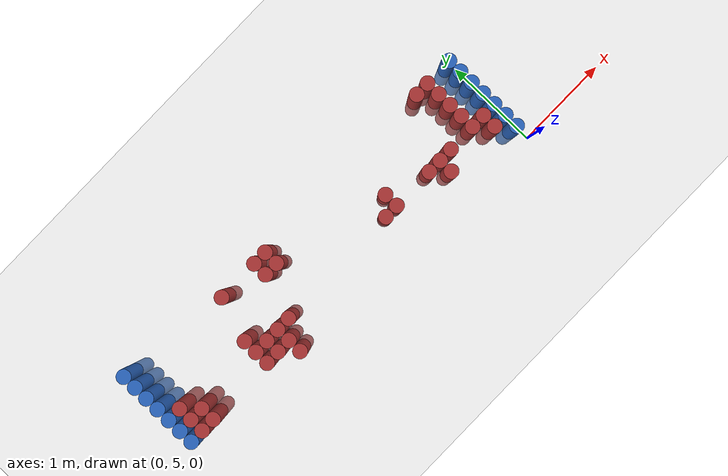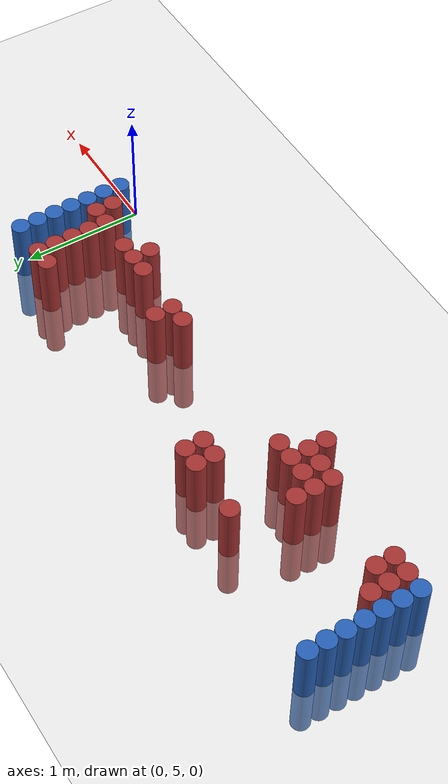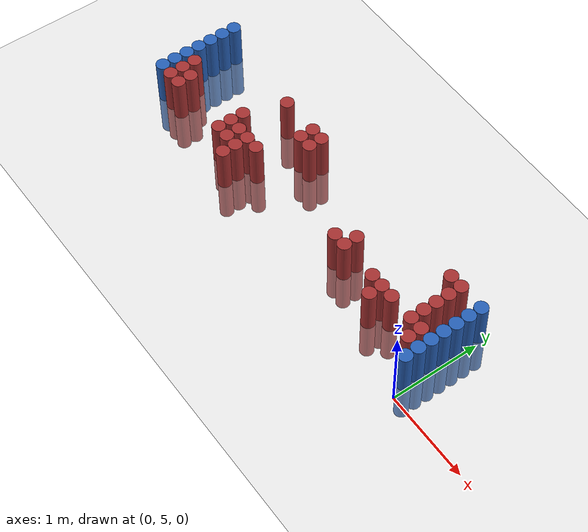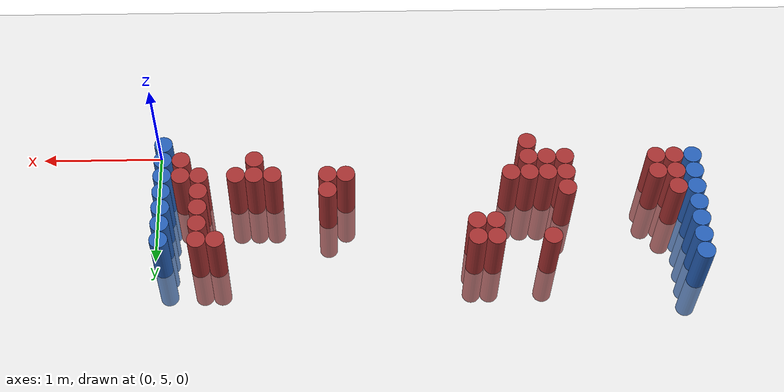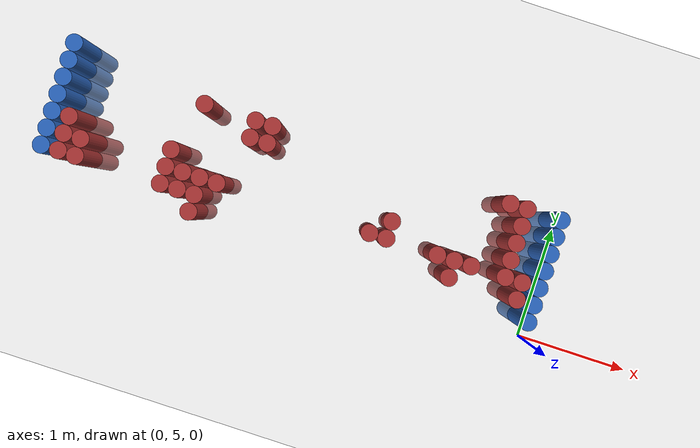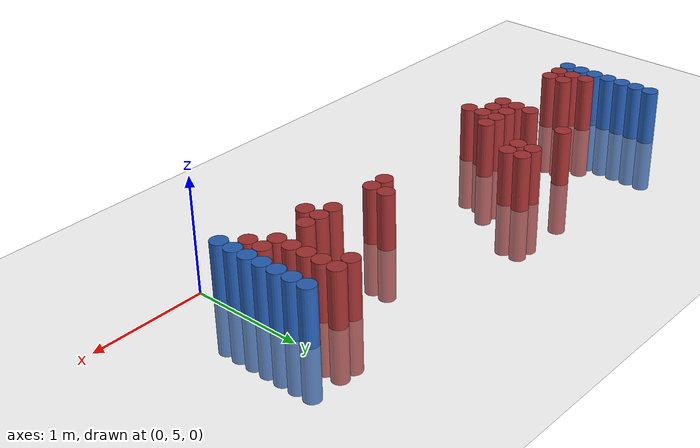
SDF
<sdf version="1.6">
 <world name="default">
  <model name="ground_plane">
   <static>1</static>
   <link name="link">
    <collision name="collision">
     <geometry><plane><normal>0 0 1</normal><size>100 100</size></plane></geometry>
     <surface><friction><ode><mu>100</mu><mu2>50</mu2></ode></friction></surface>
    </collision>
    <visual name="visual">
     <cast_shadows>0</cast_shadows>
     <geometry><plane><normal>0 0 1</normal><size>100 100</size></plane></geometry>
     <material>
      <script><uri>file://media/materials/scripts/gazebo.material</uri><name>Gazebo/Grey</name></script>
     </material>
    </visual>
   </link>
  </model>
  <model name="unit_cylinder_97">
   <static>1</static>
   <pose>-4.425000 5.325000 0.000000 0.000000 0.000000 0.000000</pose>
   <link name="link">
    <inertial>
     <mass>1</mass>
     <inertia><ixx>0.145833</ixx><ixy>0</ixy><ixz>0</ixz><iyy>0.145833</iyy><iyz>0</iyz><izz>0.125</izz></inertia>
    </inertial>
    <collision name="collision">
     <geometry><cylinder><radius>0.075000</radius><length>1</length></cylinder></geometry>
    </collision>
    <visual name="visual">
     <geometry><cylinder><radius>0.075000</radius><length>1</length></cylinder></geometry>
     <material>
      <ambient>0.152000 0.379000 0.720000 1</ambient>
      <diffuse>0.152000 0.379000 0.720000 1</diffuse>
     </material>
     <material>
      <script><name>Gazebo/Grey</name><uri>file://media/materials/scripts/gazebo.material</uri></script>
     </material>
    </visual>
   </link>
  </model>
  <model name="unit_cylinder_98">
   <static>1</static>
   <pose>-4.425000 5.475000 0.000000 0.000000 0.000000 0.000000</pose>
   <link name="link">
    <inertial>
     <mass>1</mass>
     <inertia><ixx>0.145833</ixx><ixy>0</ixy><ixz>0</ixz><iyy>0.145833</iyy><iyz>0</iyz><izz>0.125</izz></inertia>
    </inertial>
    <collision name="collision">
     <geometry><cylinder><radius>0.075000</radius><length>1</length></cylinder></geometry>
    </collision>
    <visual name="visual">
     <geometry><cylinder><radius>0.075000</radius><length>1</length></cylinder></geometry>
     <material>
      <ambient>0.152000 0.379000 0.720000 1</ambient>
      <diffuse>0.152000 0.379000 0.720000 1</diffuse>
     </material>
     <material>
      <script><name>Gazebo/Grey</name><uri>file://media/materials/scripts/gazebo.material</uri></script>
     </material>
    </visual>
   </link>
  </model>
  <model name="unit_cylinder_99">
   <static>1</static>
   <pose>-4.425000 5.625000 0.000000 0.000000 0.000000 0.000000</pose>
   <link name="link">
    <inertial>
     <mass>1</mass>
     <inertia><ixx>0.145833</ixx><ixy>0</ixy><ixz>0</ixz><iyy>0.145833</iyy><iyz>0</iyz><izz>0.125</izz></inertia>
    </inertial>
    <collision name="collision">
     <geometry><cylinder><radius>0.075000</radius><length>1</length></cylinder></geometry>
    </collision>
    <visual name="visual">
     <geometry><cylinder><radius>0.075000</radius><length>1</length></cylinder></geometry>
     <material>
      <ambient>0.152000 0.379000 0.720000 1</ambient>
      <diffuse>0.152000 0.379000 0.720000 1</diffuse>
     </material>
     <material>
      <script><name>Gazebo/Grey</name><uri>file://media/materials/scripts/gazebo.material</uri></script>
     </material>
    </visual>
   </link>
  </model>
  <model name="unit_cylinder_100">
   <static>1</static>
   <pose>-4.425000 5.775000 0.000000 0.000000 0.000000 0.000000</pose>
   <link name="link">
    <inertial>
     <mass>1</mass>
     <inertia><ixx>0.145833</ixx><ixy>0</ixy><ixz>0</ixz><iyy>0.145833</iyy><iyz>0</iyz><izz>0.125</izz></inertia>
    </inertial>
    <collision name="collision">
     <geometry><cylinder><radius>0.075000</radius><length>1</length></cylinder></geometry>
    </collision>
    <visual name="visual">
     <geometry><cylinder><radius>0.075000</radius><length>1</length></cylinder></geometry>
     <material>
      <ambient>0.152000 0.379000 0.720000 1</ambient>
      <diffuse>0.152000 0.379000 0.720000 1</diffuse>
     </material>
     <material>
      <script><name>Gazebo/Grey</name><uri>file://media/materials/scripts/gazebo.material</uri></script>
     </material>
    </visual>
   </link>
  </model>
  <model name="unit_cylinder_101">
   <static>1</static>
   <pose>-4.425000 5.925000 0.000000 0.000000 0.000000 0.000000</pose>
   <link name="link">
    <inertial>
     <mass>1</mass>
     <inertia><ixx>0.145833</ixx><ixy>0</ixy><ixz>0</ixz><iyy>0.145833</iyy><iyz>0</iyz><izz>0.125</izz></inertia>
    </inertial>
    <collision name="collision">
     <geometry><cylinder><radius>0.075000</radius><length>1</length></cylinder></geometry>
    </collision>
    <visual name="visual">
     <geometry><cylinder><radius>0.075000</radius><length>1</length></cylinder></geometry>
     <material>
      <ambient>0.152000 0.379000 0.720000 1</ambient>
      <diffuse>0.152000 0.379000 0.720000 1</diffuse>
     </material>
     <material>
      <script><name>Gazebo/Grey</name><uri>file://media/materials/scripts/gazebo.material</uri></script>
     </material>
    </visual>
   </link>
  </model>
  <model name="unit_cylinder_102">
   <static>1</static>
   <pose>-4.425000 6.075000 0.000000 0.000000 0.000000 0.000000</pose>
   <link name="link">
    <inertial>
     <mass>1</mass>
     <inertia><ixx>0.145833</ixx><ixy>0</ixy><ixz>0</ixz><iyy>0.145833</iyy><iyz>0</iyz><izz>0.125</izz></inertia>
    </inertial>
    <collision name="collision">
     <geometry><cylinder><radius>0.075000</radius><length>1</length></cylinder></geometry>
    </collision>
    <visual name="visual">
     <geometry><cylinder><radius>0.075000</radius><length>1</length></cylinder></geometry>
     <material>
      <ambient>0.152000 0.379000 0.720000 1</ambient>
      <diffuse>0.152000 0.379000 0.720000 1</diffuse>
     </material>
     <material>
      <script><name>Gazebo/Grey</name><uri>file://media/materials/scripts/gazebo.material</uri></script>
     </material>
    </visual>
   </link>
  </model>
  <model name="unit_cylinder_103">
   <static>1</static>
   <pose>-4.425000 6.225000 0.000000 0.000000 0.000000 0.000000</pose>
   <link name="link">
    <inertial>
     <mass>1</mass>
     <inertia><ixx>0.145833</ixx><ixy>0</ixy><ixz>0</ixz><iyy>0.145833</iyy><iyz>0</iyz><izz>0.125</izz></inertia>
    </inertial>
    <collision name="collision">
     <geometry><cylinder><radius>0.075000</radius><length>1</length></cylinder></geometry>
    </collision>
    <visual name="visual">
     <geometry><cylinder><radius>0.075000</radius><length>1</length></cylinder></geometry>
     <material>
      <ambient>0.152000 0.379000 0.720000 1</ambient>
      <diffuse>0.152000 0.379000 0.720000 1</diffuse>
     </material>
     <material>
      <script><name>Gazebo/Grey</name><uri>file://media/materials/scripts/gazebo.material</uri></script>
     </material>
    </visual>
   </link>
  </model>
  <model name="unit_cylinder_126">
   <static>1</static>
   <pose>-4.275000 5.325000 0.000000 0.000000 0.000000 0.000000</pose>
   <link name="link">
    <inertial>
     <mass>1</mass>
     <inertia><ixx>0.145833</ixx><ixy>0</ixy><ixz>0</ixz><iyy>0.145833</iyy><iyz>0</iyz><izz>0.125</izz></inertia>
    </inertial>
    <collision name="collision">
     <geometry><cylinder><radius>0.075000</radius><length>1</length></cylinder></geometry>
    </collision>
    <visual name="visual">
     <geometry><cylinder><radius>0.075000</radius><length>1</length></cylinder></geometry>
     <material>
      <ambient>0.648000 0.192000 0.192000 1</ambient>
      <diffuse>0.648000 0.192000 0.192000 1</diffuse>
     </material>
     <material>
      <script><name>Gazebo/Grey</name><uri>file://media/materials/scripts/gazebo.material</uri></script>
     </material>
    </visual>
   </link>
  </model>
  <model name="unit_cylinder_127">
   <static>1</static>
   <pose>-4.275000 5.475000 0.000000 0.000000 0.000000 0.000000</pose>
   <link name="link">
    <inertial>
     <mass>1</mass>
     <inertia><ixx>0.145833</ixx><ixy>0</ixy><ixz>0</ixz><iyy>0.145833</iyy><iyz>0</iyz><izz>0.125</izz></inertia>
    </inertial>
    <collision name="collision">
     <geometry><cylinder><radius>0.075000</radius><length>1</length></cylinder></geometry>
    </collision>
    <visual name="visual">
     <geometry><cylinder><radius>0.075000</radius><length>1</length></cylinder></geometry>
     <material>
      <ambient>0.648000 0.192000 0.192000 1</ambient>
      <diffuse>0.648000 0.192000 0.192000 1</diffuse>
     </material>
     <material>
      <script><name>Gazebo/Grey</name><uri>file://media/materials/scripts/gazebo.material</uri></script>
     </material>
    </visual>
   </link>
  </model>
  <model name="unit_cylinder_128">
   <static>1</static>
   <pose>-4.275000 5.625000 0.000000 0.000000 0.000000 0.000000</pose>
   <link name="link">
    <inertial>
     <mass>1</mass>
     <inertia><ixx>0.145833</ixx><ixy>0</ixy><ixz>0</ixz><iyy>0.145833</iyy><iyz>0</iyz><izz>0.125</izz></inertia>
    </inertial>
    <collision name="collision">
     <geometry><cylinder><radius>0.075000</radius><length>1</length></cylinder></geometry>
    </collision>
    <visual name="visual">
     <geometry><cylinder><radius>0.075000</radius><length>1</length></cylinder></geometry>
     <material>
      <ambient>0.648000 0.192000 0.192000 1</ambient>
      <diffuse>0.648000 0.192000 0.192000 1</diffuse>
     </material>
     <material>
      <script><name>Gazebo/Grey</name><uri>file://media/materials/scripts/gazebo.material</uri></script>
     </material>
    </visual>
   </link>
  </model>
  <model name="unit_cylinder_139">
   <static>1</static>
   <pose>-4.125000 5.325000 0.000000 0.000000 0.000000 0.000000</pose>
   <link name="link">
    <inertial>
     <mass>1</mass>
     <inertia><ixx>0.145833</ixx><ixy>0</ixy><ixz>0</ixz><iyy>0.145833</iyy><iyz>0</iyz><izz>0.125</izz></inertia>
    </inertial>
    <collision name="collision">
     <geometry><cylinder><radius>0.075000</radius><length>1</length></cylinder></geometry>
    </collision>
    <visual name="visual">
     <geometry><cylinder><radius>0.075000</radius><length>1</length></cylinder></geometry>
     <material>
      <ambient>0.648000 0.192000 0.192000 1</ambient>
      <diffuse>0.648000 0.192000 0.192000 1</diffuse>
     </material>
     <material>
      <script><name>Gazebo/Grey</name><uri>file://media/materials/scripts/gazebo.material</uri></script>
     </material>
    </visual>
   </link>
  </model>
  <model name="unit_cylinder_140">
   <static>1</static>
   <pose>-4.125000 5.475000 0.000000 0.000000 0.000000 0.000000</pose>
   <link name="link">
    <inertial>
     <mass>1</mass>
     <inertia><ixx>0.145833</ixx><ixy>0</ixy><ixz>0</ixz><iyy>0.145833</iyy><iyz>0</iyz><izz>0.125</izz></inertia>
    </inertial>
    <collision name="collision">
     <geometry><cylinder><radius>0.075000</radius><length>1</length></cylinder></geometry>
    </collision>
    <visual name="visual">
     <geometry><cylinder><radius>0.075000</radius><length>1</length></cylinder></geometry>
     <material>
      <ambient>0.648000 0.192000 0.192000 1</ambient>
      <diffuse>0.648000 0.192000 0.192000 1</diffuse>
     </material>
     <material>
      <script><name>Gazebo/Grey</name><uri>file://media/materials/scripts/gazebo.material</uri></script>
     </material>
    </visual>
   </link>
  </model>
  <model name="unit_cylinder_165">
   <static>1</static>
   <pose>-3.375000 5.325000 0.000000 0.000000 0.000000 0.000000</pose>
   <link name="link">
    <inertial>
     <mass>1</mass>
     <inertia><ixx>0.145833</ixx><ixy>0</ixy><ixz>0</ixz><iyy>0.145833</iyy><iyz>0</iyz><izz>0.125</izz></inertia>
    </inertial>
    <collision name="collision">
     <geometry><cylinder><radius>0.075000</radius><length>1</length></cylinder></geometry>
    </collision>
    <visual name="visual">
     <geometry><cylinder><radius>0.075000</radius><length>1</length></cylinder></geometry>
     <material>
      <ambient>0.648000 0.192000 0.192000 1</ambient>
      <diffuse>0.648000 0.192000 0.192000 1</diffuse>
     </material>
     <material>
      <script><name>Gazebo/Grey</name><uri>file://media/materials/scripts/gazebo.material</uri></script>
     </material>
    </visual>
   </link>
  </model>
  <model name="unit_cylinder_166">
   <static>1</static>
   <pose>-3.375000 5.475000 0.000000 0.000000 0.000000 0.000000</pose>
   <link name="link">
    <inertial>
     <mass>1</mass>
     <inertia><ixx>0.145833</ixx><ixy>0</ixy><ixz>0</ixz><iyy>0.145833</iyy><iyz>0</iyz><izz>0.125</izz></inertia>
    </inertial>
    <collision name="collision">
     <geometry><cylinder><radius>0.075000</radius><length>1</length></cylinder></geometry>
    </collision>
    <visual name="visual">
     <geometry><cylinder><radius>0.075000</radius><length>1</length></cylinder></geometry>
     <material>
      <ambient>0.648000 0.192000 0.192000 1</ambient>
      <diffuse>0.648000 0.192000 0.192000 1</diffuse>
     </material>
     <material>
      <script><name>Gazebo/Grey</name><uri>file://media/materials/scripts/gazebo.material</uri></script>
     </material>
    </visual>
   </link>
  </model>
  <model name="unit_cylinder_167">
   <static>1</static>
   <pose>-3.375000 5.625000 0.000000 0.000000 0.000000 0.000000</pose>
   <link name="link">
    <inertial>
     <mass>1</mass>
     <inertia><ixx>0.145833</ixx><ixy>0</ixy><ixz>0</ixz><iyy>0.145833</iyy><iyz>0</iyz><izz>0.125</izz></inertia>
    </inertial>
    <collision name="collision">
     <geometry><cylinder><radius>0.075000</radius><length>1</length></cylinder></geometry>
    </collision>
    <visual name="visual">
     <geometry><cylinder><radius>0.075000</radius><length>1</length></cylinder></geometry>
     <material>
      <ambient>0.648000 0.192000 0.192000 1</ambient>
      <diffuse>0.648000 0.192000 0.192000 1</diffuse>
     </material>
     <material>
      <script><name>Gazebo/Grey</name><uri>file://media/materials/scripts/gazebo.material</uri></script>
     </material>
    </visual>
   </link>
  </model>
  <model name="unit_cylinder_173">
   <static>1</static>
   <pose>-3.225000 5.325000 0.000000 0.000000 0.000000 0.000000</pose>
   <link name="link">
    <inertial>
     <mass>1</mass>
     <inertia><ixx>0.145833</ixx><ixy>0</ixy><ixz>0</ixz><iyy>0.145833</iyy><iyz>0</iyz><izz>0.125</izz></inertia>
    </inertial>
    <collision name="collision">
     <geometry><cylinder><radius>0.075000</radius><length>1</length></cylinder></geometry>
    </collision>
    <visual name="visual">
     <geometry><cylinder><radius>0.075000</radius><length>1</length></cylinder></geometry>
     <material>
      <ambient>0.648000 0.192000 0.192000 1</ambient>
      <diffuse>0.648000 0.192000 0.192000 1</diffuse>
     </material>
     <material>
      <script><name>Gazebo/Grey</name><uri>file://media/materials/scripts/gazebo.material</uri></script>
     </material>
    </visual>
   </link>
  </model>
  <model name="unit_cylinder_174">
   <static>1</static>
   <pose>-3.225000 5.475000 0.000000 0.000000 0.000000 0.000000</pose>
   <link name="link">
    <inertial>
     <mass>1</mass>
     <inertia><ixx>0.145833</ixx><ixy>0</ixy><ixz>0</ixz><iyy>0.145833</iyy><iyz>0</iyz><izz>0.125</izz></inertia>
    </inertial>
    <collision name="collision">
     <geometry><cylinder><radius>0.075000</radius><length>1</length></cylinder></geometry>
    </collision>
    <visual name="visual">
     <geometry><cylinder><radius>0.075000</radius><length>1</length></cylinder></geometry>
     <material>
      <ambient>0.648000 0.192000 0.192000 1</ambient>
      <diffuse>0.648000 0.192000 0.192000 1</diffuse>
     </material>
     <material>
      <script><name>Gazebo/Grey</name><uri>file://media/materials/scripts/gazebo.material</uri></script>
     </material>
    </visual>
   </link>
  </model>
  <model name="unit_cylinder_175">
   <static>1</static>
   <pose>-3.225000 6.075000 0.000000 0.000000 0.000000 0.000000</pose>
   <link name="link">
    <inertial>
     <mass>1</mass>
     <inertia><ixx>0.145833</ixx><ixy>0</ixy><ixz>0</ixz><iyy>0.145833</iyy><iyz>0</iyz><izz>0.125</izz></inertia>
    </inertial>
    <collision name="collision">
     <geometry><cylinder><radius>0.075000</radius><length>1</length></cylinder></geometry>
    </collision>
    <visual name="visual">
     <geometry><cylinder><radius>0.075000</radius><length>1</length></cylinder></geometry>
     <material>
      <ambient>0.648000 0.192000 0.192000 1</ambient>
      <diffuse>0.648000 0.192000 0.192000 1</diffuse>
     </material>
     <material>
      <script><name>Gazebo/Grey</name><uri>file://media/materials/scripts/gazebo.material</uri></script>
     </material>
    </visual>
   </link>
  </model>
  <model name="unit_cylinder_180">
   <static>1</static>
   <pose>-3.075000 5.175000 0.000000 0.000000 0.000000 0.000000</pose>
   <link name="link">
    <inertial>
     <mass>1</mass>
     <inertia><ixx>0.145833</ixx><ixy>0</ixy><ixz>0</ixz><iyy>0.145833</iyy><iyz>0</iyz><izz>0.125</izz></inertia>
    </inertial>
    <collision name="collision">
     <geometry><cylinder><radius>0.075000</radius><length>1</length></cylinder></geometry>
    </collision>
    <visual name="visual">
     <geometry><cylinder><radius>0.075000</radius><length>1</length></cylinder></geometry>
     <material>
      <ambient>0.648000 0.192000 0.192000 1</ambient>
      <diffuse>0.648000 0.192000 0.192000 1</diffuse>
     </material>
     <material>
      <script><name>Gazebo/Grey</name><uri>file://media/materials/scripts/gazebo.material</uri></script>
     </material>
    </visual>
   </link>
  </model>
  <model name="unit_cylinder_181">
   <static>1</static>
   <pose>-3.075000 5.325000 0.000000 0.000000 0.000000 0.000000</pose>
   <link name="link">
    <inertial>
     <mass>1</mass>
     <inertia><ixx>0.145833</ixx><ixy>0</ixy><ixz>0</ixz><iyy>0.145833</iyy><iyz>0</iyz><izz>0.125</izz></inertia>
    </inertial>
    <collision name="collision">
     <geometry><cylinder><radius>0.075000</radius><length>1</length></cylinder></geometry>
    </collision>
    <visual name="visual">
     <geometry><cylinder><radius>0.075000</radius><length>1</length></cylinder></geometry>
     <material>
      <ambient>0.648000 0.192000 0.192000 1</ambient>
      <diffuse>0.648000 0.192000 0.192000 1</diffuse>
     </material>
     <material>
      <script><name>Gazebo/Grey</name><uri>file://media/materials/scripts/gazebo.material</uri></script>
     </material>
    </visual>
   </link>
  </model>
  <model name="unit_cylinder_182">
   <static>1</static>
   <pose>-3.075000 5.475000 0.000000 0.000000 0.000000 0.000000</pose>
   <link name="link">
    <inertial>
     <mass>1</mass>
     <inertia><ixx>0.145833</ixx><ixy>0</ixy><ixz>0</ixz><iyy>0.145833</iyy><iyz>0</iyz><izz>0.125</izz></inertia>
    </inertial>
    <collision name="collision">
     <geometry><cylinder><radius>0.075000</radius><length>1</length></cylinder></geometry>
    </collision>
    <visual name="visual">
     <geometry><cylinder><radius>0.075000</radius><length>1</length></cylinder></geometry>
     <material>
      <ambient>0.648000 0.192000 0.192000 1</ambient>
      <diffuse>0.648000 0.192000 0.192000 1</diffuse>
     </material>
     <material>
      <script><name>Gazebo/Grey</name><uri>file://media/materials/scripts/gazebo.material</uri></script>
     </material>
    </visual>
   </link>
  </model>
  <model name="unit_cylinder_188">
   <static>1</static>
   <pose>-2.925000 5.475000 0.000000 0.000000 0.000000 0.000000</pose>
   <link name="link">
    <inertial>
     <mass>1</mass>
     <inertia><ixx>0.145833</ixx><ixy>0</ixy><ixz>0</ixz><iyy>0.145833</iyy><iyz>0</iyz><izz>0.125</izz></inertia>
    </inertial>
    <collision name="collision">
     <geometry><cylinder><radius>0.075000</radius><length>1</length></cylinder></geometry>
    </collision>
    <visual name="visual">
     <geometry><cylinder><radius>0.075000</radius><length>1</length></cylinder></geometry>
     <material>
      <ambient>0.648000 0.192000 0.192000 1</ambient>
      <diffuse>0.648000 0.192000 0.192000 1</diffuse>
     </material>
     <material>
      <script><name>Gazebo/Grey</name><uri>file://media/materials/scripts/gazebo.material</uri></script>
     </material>
    </visual>
   </link>
  </model>
  <model name="unit_cylinder_192">
   <static>1</static>
   <pose>-2.775000 5.925000 0.000000 0.000000 0.000000 0.000000</pose>
   <link name="link">
    <inertial>
     <mass>1</mass>
     <inertia><ixx>0.145833</ixx><ixy>0</ixy><ixz>0</ixz><iyy>0.145833</iyy><iyz>0</iyz><izz>0.125</izz></inertia>
    </inertial>
    <collision name="collision">
     <geometry><cylinder><radius>0.075000</radius><length>1</length></cylinder></geometry>
    </collision>
    <visual name="visual">
     <geometry><cylinder><radius>0.075000</radius><length>1</length></cylinder></geometry>
     <material>
      <ambient>0.648000 0.192000 0.192000 1</ambient>
      <diffuse>0.648000 0.192000 0.192000 1</diffuse>
     </material>
     <material>
      <script><name>Gazebo/Grey</name><uri>file://media/materials/scripts/gazebo.material</uri></script>
     </material>
    </visual>
   </link>
  </model>
  <model name="unit_cylinder_193">
   <static>1</static>
   <pose>-2.775000 6.075000 0.000000 0.000000 0.000000 0.000000</pose>
   <link name="link">
    <inertial>
     <mass>1</mass>
     <inertia><ixx>0.145833</ixx><ixy>0</ixy><ixz>0</ixz><iyy>0.145833</iyy><iyz>0</iyz><izz>0.125</izz></inertia>
    </inertial>
    <collision name="collision">
     <geometry><cylinder><radius>0.075000</radius><length>1</length></cylinder></geometry>
    </collision>
    <visual name="visual">
     <geometry><cylinder><radius>0.075000</radius><length>1</length></cylinder></geometry>
     <material>
      <ambient>0.648000 0.192000 0.192000 1</ambient>
      <diffuse>0.648000 0.192000 0.192000 1</diffuse>
     </material>
     <material>
      <script><name>Gazebo/Grey</name><uri>file://media/materials/scripts/gazebo.material</uri></script>
     </material>
    </visual>
   </link>
  </model>
  <model name="unit_cylinder_194">
   <static>1</static>
   <pose>-2.625000 5.925000 0.000000 0.000000 0.000000 0.000000</pose>
   <link name="link">
    <inertial>
     <mass>1</mass>
     <inertia><ixx>0.145833</ixx><ixy>0</ixy><ixz>0</ixz><iyy>0.145833</iyy><iyz>0</iyz><izz>0.125</izz></inertia>
    </inertial>
    <collision name="collision">
     <geometry><cylinder><radius>0.075000</radius><length>1</length></cylinder></geometry>
    </collision>
    <visual name="visual">
     <geometry><cylinder><radius>0.075000</radius><length>1</length></cylinder></geometry>
     <material>
      <ambient>0.648000 0.192000 0.192000 1</ambient>
      <diffuse>0.648000 0.192000 0.192000 1</diffuse>
     </material>
     <material>
      <script><name>Gazebo/Grey</name><uri>file://media/materials/scripts/gazebo.material</uri></script>
     </material>
    </visual>
   </link>
  </model>
  <model name="unit_cylinder_195">
   <static>1</static>
   <pose>-2.625000 6.075000 0.000000 0.000000 0.000000 0.000000</pose>
   <link name="link">
    <inertial>
     <mass>1</mass>
     <inertia><ixx>0.145833</ixx><ixy>0</ixy><ixz>0</ixz><iyy>0.145833</iyy><iyz>0</iyz><izz>0.125</izz></inertia>
    </inertial>
    <collision name="collision">
     <geometry><cylinder><radius>0.075000</radius><length>1</length></cylinder></geometry>
    </collision>
    <visual name="visual">
     <geometry><cylinder><radius>0.075000</radius><length>1</length></cylinder></geometry>
     <material>
      <ambient>0.648000 0.192000 0.192000 1</ambient>
      <diffuse>0.648000 0.192000 0.192000 1</diffuse>
     </material>
     <material>
      <script><name>Gazebo/Grey</name><uri>file://media/materials/scripts/gazebo.material</uri></script>
     </material>
    </visual>
   </link>
  </model>
  <model name="unit_cylinder_214">
   <static>1</static>
   <pose>-1.575000 5.475000 0.000000 0.000000 0.000000 0.000000</pose>
   <link name="link">
    <inertial>
     <mass>1</mass>
     <inertia><ixx>0.145833</ixx><ixy>0</ixy><ixz>0</ixz><iyy>0.145833</iyy><iyz>0</iyz><izz>0.125</izz></inertia>
    </inertial>
    <collision name="collision">
     <geometry><cylinder><radius>0.075000</radius><length>1</length></cylinder></geometry>
    </collision>
    <visual name="visual">
     <geometry><cylinder><radius>0.075000</radius><length>1</length></cylinder></geometry>
     <material>
      <ambient>0.648000 0.192000 0.192000 1</ambient>
      <diffuse>0.648000 0.192000 0.192000 1</diffuse>
     </material>
     <material>
      <script><name>Gazebo/Grey</name><uri>file://media/materials/scripts/gazebo.material</uri></script>
     </material>
    </visual>
   </link>
  </model>
  <model name="unit_cylinder_216">
   <static>1</static>
   <pose>-1.425000 5.475000 0.000000 0.000000 0.000000 0.000000</pose>
   <link name="link">
    <inertial>
     <mass>1</mass>
     <inertia><ixx>0.145833</ixx><ixy>0</ixy><ixz>0</ixz><iyy>0.145833</iyy><iyz>0</iyz><izz>0.125</izz></inertia>
    </inertial>
    <collision name="collision">
     <geometry><cylinder><radius>0.075000</radius><length>1</length></cylinder></geometry>
    </collision>
    <visual name="visual">
     <geometry><cylinder><radius>0.075000</radius><length>1</length></cylinder></geometry>
     <material>
      <ambient>0.648000 0.192000 0.192000 1</ambient>
      <diffuse>0.648000 0.192000 0.192000 1</diffuse>
     </material>
     <material>
      <script><name>Gazebo/Grey</name><uri>file://media/materials/scripts/gazebo.material</uri></script>
     </material>
    </visual>
   </link>
  </model>
  <model name="unit_cylinder_217">
   <static>1</static>
   <pose>-1.425000 5.625000 0.000000 0.000000 0.000000 0.000000</pose>
   <link name="link">
    <inertial>
     <mass>1</mass>
     <inertia><ixx>0.145833</ixx><ixy>0</ixy><ixz>0</ixz><iyy>0.145833</iyy><iyz>0</iyz><izz>0.125</izz></inertia>
    </inertial>
    <collision name="collision">
     <geometry><cylinder><radius>0.075000</radius><length>1</length></cylinder></geometry>
    </collision>
    <visual name="visual">
     <geometry><cylinder><radius>0.075000</radius><length>1</length></cylinder></geometry>
     <material>
      <ambient>0.648000 0.192000 0.192000 1</ambient>
      <diffuse>0.648000 0.192000 0.192000 1</diffuse>
     </material>
     <material>
      <script><name>Gazebo/Grey</name><uri>file://media/materials/scripts/gazebo.material</uri></script>
     </material>
    </visual>
   </link>
  </model>
  <model name="unit_cylinder_219">
   <static>1</static>
   <pose>-0.975000 5.475000 0.000000 0.000000 0.000000 0.000000</pose>
   <link name="link">
    <inertial>
     <mass>1</mass>
     <inertia><ixx>0.145833</ixx><ixy>0</ixy><ixz>0</ixz><iyy>0.145833</iyy><iyz>0</iyz><izz>0.125</izz></inertia>
    </inertial>
    <collision name="collision">
     <geometry><cylinder><radius>0.075000</radius><length>1</length></cylinder></geometry>
    </collision>
    <visual name="visual">
     <geometry><cylinder><radius>0.075000</radius><length>1</length></cylinder></geometry>
     <material>
      <ambient>0.648000 0.192000 0.192000 1</ambient>
      <diffuse>0.648000 0.192000 0.192000 1</diffuse>
     </material>
     <material>
      <script><name>Gazebo/Grey</name><uri>file://media/materials/scripts/gazebo.material</uri></script>
     </material>
    </visual>
   </link>
  </model>
  <model name="unit_cylinder_222">
   <static>1</static>
   <pose>-0.825000 5.325000 0.000000 0.000000 0.000000 0.000000</pose>
   <link name="link">
    <inertial>
     <mass>1</mass>
     <inertia><ixx>0.145833</ixx><ixy>0</ixy><ixz>0</ixz><iyy>0.145833</iyy><iyz>0</iyz><izz>0.125</izz></inertia>
    </inertial>
    <collision name="collision">
     <geometry><cylinder><radius>0.075000</radius><length>1</length></cylinder></geometry>
    </collision>
    <visual name="visual">
     <geometry><cylinder><radius>0.075000</radius><length>1</length></cylinder></geometry>
     <material>
      <ambient>0.648000 0.192000 0.192000 1</ambient>
      <diffuse>0.648000 0.192000 0.192000 1</diffuse>
     </material>
     <material>
      <script><name>Gazebo/Grey</name><uri>file://media/materials/scripts/gazebo.material</uri></script>
     </material>
    </visual>
   </link>
  </model>
  <model name="unit_cylinder_223">
   <static>1</static>
   <pose>-0.825000 5.475000 0.000000 0.000000 0.000000 0.000000</pose>
   <link name="link">
    <inertial>
     <mass>1</mass>
     <inertia><ixx>0.145833</ixx><ixy>0</ixy><ixz>0</ixz><iyy>0.145833</iyy><iyz>0</iyz><izz>0.125</izz></inertia>
    </inertial>
    <collision name="collision">
     <geometry><cylinder><radius>0.075000</radius><length>1</length></cylinder></geometry>
    </collision>
    <visual name="visual">
     <geometry><cylinder><radius>0.075000</radius><length>1</length></cylinder></geometry>
     <material>
      <ambient>0.648000 0.192000 0.192000 1</ambient>
      <diffuse>0.648000 0.192000 0.192000 1</diffuse>
     </material>
     <material>
      <script><name>Gazebo/Grey</name><uri>file://media/materials/scripts/gazebo.material</uri></script>
     </material>
    </visual>
   </link>
  </model>
  <model name="unit_cylinder_225">
   <static>1</static>
   <pose>-0.675000 5.475000 0.000000 0.000000 0.000000 0.000000</pose>
   <link name="link">
    <inertial>
     <mass>1</mass>
     <inertia><ixx>0.145833</ixx><ixy>0</ixy><ixz>0</ixz><iyy>0.145833</iyy><iyz>0</iyz><izz>0.125</izz></inertia>
    </inertial>
    <collision name="collision">
     <geometry><cylinder><radius>0.075000</radius><length>1</length></cylinder></geometry>
    </collision>
    <visual name="visual">
     <geometry><cylinder><radius>0.075000</radius><length>1</length></cylinder></geometry>
     <material>
      <ambient>0.648000 0.192000 0.192000 1</ambient>
      <diffuse>0.648000 0.192000 0.192000 1</diffuse>
     </material>
     <material>
      <script><name>Gazebo/Grey</name><uri>file://media/materials/scripts/gazebo.material</uri></script>
     </material>
    </visual>
   </link>
  </model>
  <model name="unit_cylinder_233">
   <static>1</static>
   <pose>-0.525000 6.075000 0.000000 0.000000 0.000000 0.000000</pose>
   <link name="link">
    <inertial>
     <mass>1</mass>
     <inertia><ixx>0.145833</ixx><ixy>0</ixy><ixz>0</ixz><iyy>0.145833</iyy><iyz>0</iyz><izz>0.125</izz></inertia>
    </inertial>
    <collision name="collision">
     <geometry><cylinder><radius>0.075000</radius><length>1</length></cylinder></geometry>
    </collision>
    <visual name="visual">
     <geometry><cylinder><radius>0.075000</radius><length>1</length></cylinder></geometry>
     <material>
      <ambient>0.648000 0.192000 0.192000 1</ambient>
      <diffuse>0.648000 0.192000 0.192000 1</diffuse>
     </material>
     <material>
      <script><name>Gazebo/Grey</name><uri>file://media/materials/scripts/gazebo.material</uri></script>
     </material>
    </visual>
   </link>
  </model>
  <model name="unit_cylinder_238">
   <static>1</static>
   <pose>-0.375000 5.475000 0.000000 0.000000 0.000000 0.000000</pose>
   <link name="link">
    <inertial>
     <mass>1</mass>
     <inertia><ixx>0.145833</ixx><ixy>0</ixy><ixz>0</ixz><iyy>0.145833</iyy><iyz>0</iyz><izz>0.125</izz></inertia>
    </inertial>
    <collision name="collision">
     <geometry><cylinder><radius>0.075000</radius><length>1</length></cylinder></geometry>
    </collision>
    <visual name="visual">
     <geometry><cylinder><radius>0.075000</radius><length>1</length></cylinder></geometry>
     <material>
      <ambient>0.648000 0.192000 0.192000 1</ambient>
      <diffuse>0.648000 0.192000 0.192000 1</diffuse>
     </material>
     <material>
      <script><name>Gazebo/Grey</name><uri>file://media/materials/scripts/gazebo.material</uri></script>
     </material>
    </visual>
   </link>
  </model>
  <model name="unit_cylinder_239">
   <static>1</static>
   <pose>-0.375000 5.625000 0.000000 0.000000 0.000000 0.000000</pose>
   <link name="link">
    <inertial>
     <mass>1</mass>
     <inertia><ixx>0.145833</ixx><ixy>0</ixy><ixz>0</ixz><iyy>0.145833</iyy><iyz>0</iyz><izz>0.125</izz></inertia>
    </inertial>
    <collision name="collision">
     <geometry><cylinder><radius>0.075000</radius><length>1</length></cylinder></geometry>
    </collision>
    <visual name="visual">
     <geometry><cylinder><radius>0.075000</radius><length>1</length></cylinder></geometry>
     <material>
      <ambient>0.648000 0.192000 0.192000 1</ambient>
      <diffuse>0.648000 0.192000 0.192000 1</diffuse>
     </material>
     <material>
      <script><name>Gazebo/Grey</name><uri>file://media/materials/scripts/gazebo.material</uri></script>
     </material>
    </visual>
   </link>
  </model>
  <model name="unit_cylinder_240">
   <static>1</static>
   <pose>-0.375000 5.775000 0.000000 0.000000 0.000000 0.000000</pose>
   <link name="link">
    <inertial>
     <mass>1</mass>
     <inertia><ixx>0.145833</ixx><ixy>0</ixy><ixz>0</ixz><iyy>0.145833</iyy><iyz>0</iyz><izz>0.125</izz></inertia>
    </inertial>
    <collision name="collision">
     <geometry><cylinder><radius>0.075000</radius><length>1</length></cylinder></geometry>
    </collision>
    <visual name="visual">
     <geometry><cylinder><radius>0.075000</radius><length>1</length></cylinder></geometry>
     <material>
      <ambient>0.648000 0.192000 0.192000 1</ambient>
      <diffuse>0.648000 0.192000 0.192000 1</diffuse>
     </material>
     <material>
      <script><name>Gazebo/Grey</name><uri>file://media/materials/scripts/gazebo.material</uri></script>
     </material>
    </visual>
   </link>
  </model>
  <model name="unit_cylinder_241">
   <static>1</static>
   <pose>-0.375000 5.925000 0.000000 0.000000 0.000000 0.000000</pose>
   <link name="link">
    <inertial>
     <mass>1</mass>
     <inertia><ixx>0.145833</ixx><ixy>0</ixy><ixz>0</ixz><iyy>0.145833</iyy><iyz>0</iyz><izz>0.125</izz></inertia>
    </inertial>
    <collision name="collision">
     <geometry><cylinder><radius>0.075000</radius><length>1</length></cylinder></geometry>
    </collision>
    <visual name="visual">
     <geometry><cylinder><radius>0.075000</radius><length>1</length></cylinder></geometry>
     <material>
      <ambient>0.648000 0.192000 0.192000 1</ambient>
      <diffuse>0.648000 0.192000 0.192000 1</diffuse>
     </material>
     <material>
      <script><name>Gazebo/Grey</name><uri>file://media/materials/scripts/gazebo.material</uri></script>
     </material>
    </visual>
   </link>
  </model>
  <model name="unit_cylinder_242">
   <static>1</static>
   <pose>-0.375000 6.075000 0.000000 0.000000 0.000000 0.000000</pose>
   <link name="link">
    <inertial>
     <mass>1</mass>
     <inertia><ixx>0.145833</ixx><ixy>0</ixy><ixz>0</ixz><iyy>0.145833</iyy><iyz>0</iyz><izz>0.125</izz></inertia>
    </inertial>
    <collision name="collision">
     <geometry><cylinder><radius>0.075000</radius><length>1</length></cylinder></geometry>
    </collision>
    <visual name="visual">
     <geometry><cylinder><radius>0.075000</radius><length>1</length></cylinder></geometry>
     <material>
      <ambient>0.648000 0.192000 0.192000 1</ambient>
      <diffuse>0.648000 0.192000 0.192000 1</diffuse>
     </material>
     <material>
      <script><name>Gazebo/Grey</name><uri>file://media/materials/scripts/gazebo.material</uri></script>
     </material>
    </visual>
   </link>
  </model>
  <model name="unit_cylinder_247">
   <static>1</static>
   <pose>-0.225000 5.325000 0.000000 0.000000 0.000000 0.000000</pose>
   <link name="link">
    <inertial>
     <mass>1</mass>
     <inertia><ixx>0.145833</ixx><ixy>0</ixy><ixz>0</ixz><iyy>0.145833</iyy><iyz>0</iyz><izz>0.125</izz></inertia>
    </inertial>
    <collision name="collision">
     <geometry><cylinder><radius>0.075000</radius><length>1</length></cylinder></geometry>
    </collision>
    <visual name="visual">
     <geometry><cylinder><radius>0.075000</radius><length>1</length></cylinder></geometry>
     <material>
      <ambient>0.648000 0.192000 0.192000 1</ambient>
      <diffuse>0.648000 0.192000 0.192000 1</diffuse>
     </material>
     <material>
      <script><name>Gazebo/Grey</name><uri>file://media/materials/scripts/gazebo.material</uri></script>
     </material>
    </visual>
   </link>
  </model>
  <model name="unit_cylinder_248">
   <static>1</static>
   <pose>-0.225000 5.475000 0.000000 0.000000 0.000000 0.000000</pose>
   <link name="link">
    <inertial>
     <mass>1</mass>
     <inertia><ixx>0.145833</ixx><ixy>0</ixy><ixz>0</ixz><iyy>0.145833</iyy><iyz>0</iyz><izz>0.125</izz></inertia>
    </inertial>
    <collision name="collision">
     <geometry><cylinder><radius>0.075000</radius><length>1</length></cylinder></geometry>
    </collision>
    <visual name="visual">
     <geometry><cylinder><radius>0.075000</radius><length>1</length></cylinder></geometry>
     <material>
      <ambient>0.648000 0.192000 0.192000 1</ambient>
      <diffuse>0.648000 0.192000 0.192000 1</diffuse>
     </material>
     <material>
      <script><name>Gazebo/Grey</name><uri>file://media/materials/scripts/gazebo.material</uri></script>
     </material>
    </visual>
   </link>
  </model>
  <model name="unit_cylinder_259">
   <static>1</static>
   <pose>-0.075000 5.175000 0.000000 0.000000 0.000000 0.000000</pose>
   <link name="link">
    <inertial>
     <mass>1</mass>
     <inertia><ixx>0.145833</ixx><ixy>0</ixy><ixz>0</ixz><iyy>0.145833</iyy><iyz>0</iyz><izz>0.125</izz></inertia>
    </inertial>
    <collision name="collision">
     <geometry><cylinder><radius>0.075000</radius><length>1</length></cylinder></geometry>
    </collision>
    <visual name="visual">
     <geometry><cylinder><radius>0.075000</radius><length>1</length></cylinder></geometry>
     <material>
      <ambient>0.152000 0.379000 0.720000 1</ambient>
      <diffuse>0.152000 0.379000 0.720000 1</diffuse>
     </material>
     <material>
      <script><name>Gazebo/Grey</name><uri>file://media/materials/scripts/gazebo.material</uri></script>
     </material>
    </visual>
   </link>
  </model>
  <model name="unit_cylinder_260">
   <static>1</static>
   <pose>-0.075000 5.325000 0.000000 0.000000 0.000000 0.000000</pose>
   <link name="link">
    <inertial>
     <mass>1</mass>
     <inertia><ixx>0.145833</ixx><ixy>0</ixy><ixz>0</ixz><iyy>0.145833</iyy><iyz>0</iyz><izz>0.125</izz></inertia>
    </inertial>
    <collision name="collision">
     <geometry><cylinder><radius>0.075000</radius><length>1</length></cylinder></geometry>
    </collision>
    <visual name="visual">
     <geometry><cylinder><radius>0.075000</radius><length>1</length></cylinder></geometry>
     <material>
      <ambient>0.152000 0.379000 0.720000 1</ambient>
      <diffuse>0.152000 0.379000 0.720000 1</diffuse>
     </material>
     <material>
      <script><name>Gazebo/Grey</name><uri>file://media/materials/scripts/gazebo.material</uri></script>
     </material>
    </visual>
   </link>
  </model>
  <model name="unit_cylinder_261">
   <static>1</static>
   <pose>-0.075000 5.475000 0.000000 0.000000 0.000000 0.000000</pose>
   <link name="link">
    <inertial>
     <mass>1</mass>
     <inertia><ixx>0.145833</ixx><ixy>0</ixy><ixz>0</ixz><iyy>0.145833</iyy><iyz>0</iyz><izz>0.125</izz></inertia>
    </inertial>
    <collision name="collision">
     <geometry><cylinder><radius>0.075000</radius><length>1</length></cylinder></geometry>
    </collision>
    <visual name="visual">
     <geometry><cylinder><radius>0.075000</radius><length>1</length></cylinder></geometry>
     <material>
      <ambient>0.152000 0.379000 0.720000 1</ambient>
      <diffuse>0.152000 0.379000 0.720000 1</diffuse>
     </material>
     <material>
      <script><name>Gazebo/Grey</name><uri>file://media/materials/scripts/gazebo.material</uri></script>
     </material>
    </visual>
   </link>
  </model>
  <model name="unit_cylinder_262">
   <static>1</static>
   <pose>-0.075000 5.625000 0.000000 0.000000 0.000000 0.000000</pose>
   <link name="link">
    <inertial>
     <mass>1</mass>
     <inertia><ixx>0.145833</ixx><ixy>0</ixy><ixz>0</ixz><iyy>0.145833</iyy><iyz>0</iyz><izz>0.125</izz></inertia>
    </inertial>
    <collision name="collision">
     <geometry><cylinder><radius>0.075000</radius><length>1</length></cylinder></geometry>
    </collision>
    <visual name="visual">
     <geometry><cylinder><radius>0.075000</radius><length>1</length></cylinder></geometry>
     <material>
      <ambient>0.152000 0.379000 0.720000 1</ambient>
      <diffuse>0.152000 0.379000 0.720000 1</diffuse>
     </material>
     <material>
      <script><name>Gazebo/Grey</name><uri>file://media/materials/scripts/gazebo.material</uri></script>
     </material>
    </visual>
   </link>
  </model>
  <model name="unit_cylinder_263">
   <static>1</static>
   <pose>-0.075000 5.775000 0.000000 0.000000 0.000000 0.000000</pose>
   <link name="link">
    <inertial>
     <mass>1</mass>
     <inertia><ixx>0.145833</ixx><ixy>0</ixy><ixz>0</ixz><iyy>0.145833</iyy><iyz>0</iyz><izz>0.125</izz></inertia>
    </inertial>
    <collision name="collision">
     <geometry><cylinder><radius>0.075000</radius><length>1</length></cylinder></geometry>
    </collision>
    <visual name="visual">
     <geometry><cylinder><radius>0.075000</radius><length>1</length></cylinder></geometry>
     <material>
      <ambient>0.152000 0.379000 0.720000 1</ambient>
      <diffuse>0.152000 0.379000 0.720000 1</diffuse>
     </material>
     <material>
      <script><name>Gazebo/Grey</name><uri>file://media/materials/scripts/gazebo.material</uri></script>
     </material>
    </visual>
   </link>
  </model>
  <model name="unit_cylinder_264">
   <static>1</static>
   <pose>-0.075000 5.925000 0.000000 0.000000 0.000000 0.000000</pose>
   <link name="link">
    <inertial>
     <mass>1</mass>
     <inertia><ixx>0.145833</ixx><ixy>0</ixy><ixz>0</ixz><iyy>0.145833</iyy><iyz>0</iyz><izz>0.125</izz></inertia>
    </inertial>
    <collision name="collision">
     <geometry><cylinder><radius>0.075000</radius><length>1</length></cylinder></geometry>
    </collision>
    <visual name="visual">
     <geometry><cylinder><radius>0.075000</radius><length>1</length></cylinder></geometry>
     <material>
      <ambient>0.152000 0.379000 0.720000 1</ambient>
      <diffuse>0.152000 0.379000 0.720000 1</diffuse>
     </material>
     <material>
      <script><name>Gazebo/Grey</name><uri>file://media/materials/scripts/gazebo.material</uri></script>
     </material>
    </visual>
   </link>
  </model>
  <model name="unit_cylinder_265">
   <static>1</static>
   <pose>-0.075000 6.075000 0.000000 0.000000 0.000000 0.000000</pose>
   <link name="link">
    <inertial>
     <mass>1</mass>
     <inertia><ixx>0.145833</ixx><ixy>0</ixy><ixz>0</ixz><iyy>0.145833</iyy><iyz>0</iyz><izz>0.125</izz></inertia>
    </inertial>
    <collision name="collision">
     <geometry><cylinder><radius>0.075000</radius><length>1</length></cylinder></geometry>
    </collision>
    <visual name="visual">
     <geometry><cylinder><radius>0.075000</radius><length>1</length></cylinder></geometry>
     <material>
      <ambient>0.152000 0.379000 0.720000 1</ambient>
      <diffuse>0.152000 0.379000 0.720000 1</diffuse>
     </material>
     <material>
      <script><name>Gazebo/Grey</name><uri>file://media/materials/scripts/gazebo.material</uri></script>
     </material>
    </visual>
   </link>
  </model>
 </world>
</sdf>
